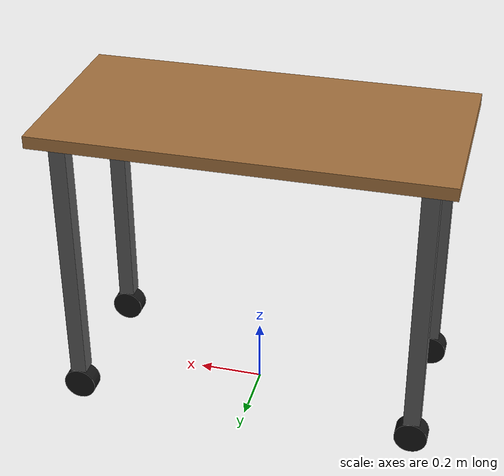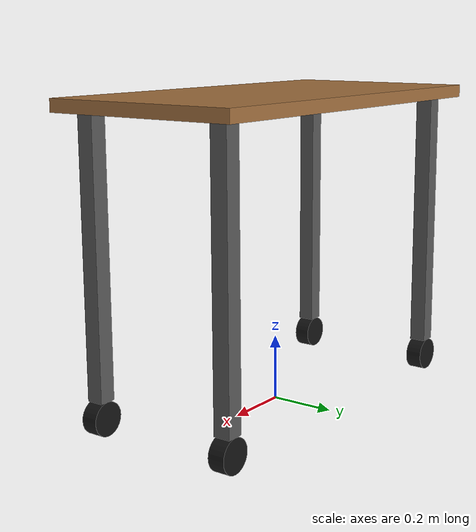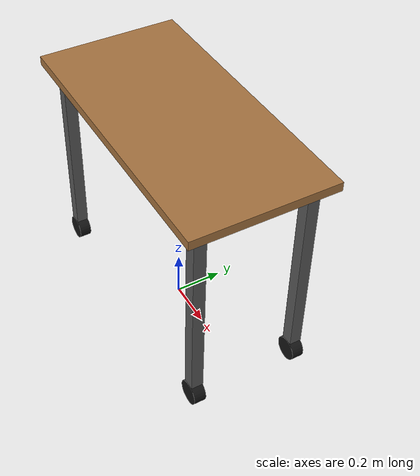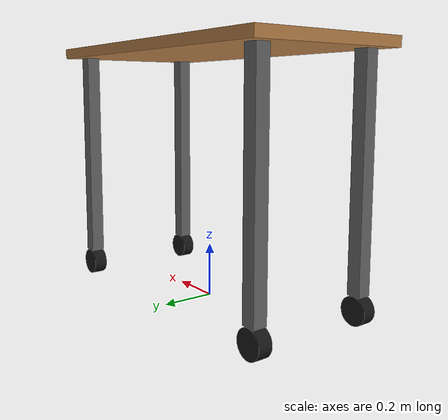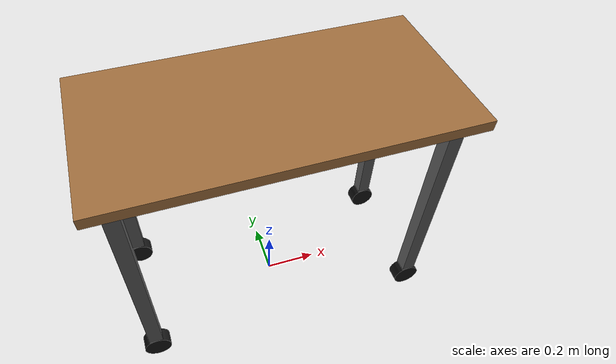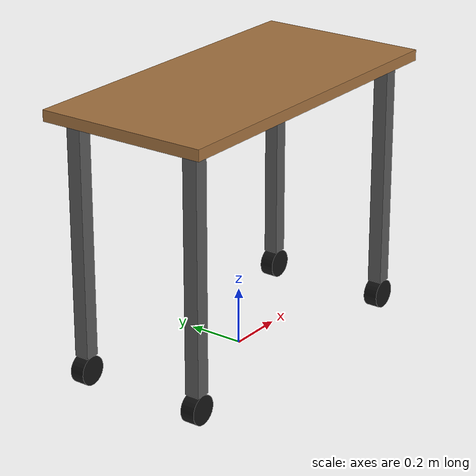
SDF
<?xml version="1.0" ?>
<sdf version="1.9">
  <model name="my_table">
    <static>true</static>

    <!-- TABLETOP                  -->
    <link name="tabletop">
      <!-- top surface at total height = 0.9525 -->
      <!-- tabletop center z = 0.9525 - 0.0381/2 = 0.93345 -->
      <pose>0 0 0.93345 0 0 0</pose>

      <collision name="tabletop_collision">
        <geometry>
          <box>
            <size>1.2192 0.60325 0.0381</size>
          </box>
        </geometry>
      </collision>

      <visual name="tabletop_visual">
        <geometry>
          <box>
            <size>1.2192 0.60325 0.0381</size>
          </box>
        </geometry>
        <material>
          <ambient>0.65 0.45 0.25 1</ambient>
          <diffuse>0.65 0.45 0.25 1</diffuse>
        </material>
      </visual>

      <inertial>
        <mass>18.0</mass>
        <inertia>
          <ixx>1.0</ixx>
          <iyy>1.0</iyy>
          <izz>1.0</izz>
          <ixy>0.0</ixy>
          <ixz>0.0</ixz>
          <iyz>0.0</iyz>
        </inertia>
      </inertial>
    </link>

    <!-- LEGS                      -->
    <!-- leg center z = wheel diameter + leg length/2 -->

    <link name="leg_fl">
      <pose>0.5334 0.226425 0.5080 0 0 0</pose>
      <collision name="collision">
        <geometry>
          <box>
            <size>0.0508 0.0508 0.8128</size>
          </box>
        </geometry>
      </collision>
      <visual name="visual">
        <geometry>
          <box>
            <size>0.0508 0.0508 0.8128</size>
          </box>
        </geometry>
        <material>
          <ambient>0.35 0.35 0.35 1</ambient>
          <diffuse>0.35 0.35 0.35 1</diffuse>
        </material>
      </visual>
      <inertial>
        <mass>2.5</mass>
        <inertia>
          <ixx>0.02</ixx>
          <iyy>0.02</iyy>
          <izz>0.02</izz>
          <ixy>0.0</ixy>
          <ixz>0.0</ixz>
          <iyz>0.0</iyz>
        </inertia>
      </inertial>
    </link>

    <link name="leg_fr">
      <pose>0.5334 -0.226425 0.5080 0 0 0</pose>
      <collision name="collision">
        <geometry>
          <box>
            <size>0.0508 0.0508 0.8128</size>
          </box>
        </geometry>
      </collision>
      <visual name="visual">
        <geometry>
          <box>
            <size>0.0508 0.0508 0.8128</size>
          </box>
        </geometry>
        <material>
          <ambient>0.35 0.35 0.35 1</ambient>
          <diffuse>0.35 0.35 0.35 1</diffuse>
        </material>
      </visual>
      <inertial>
        <mass>2.5</mass>
        <inertia>
          <ixx>0.02</ixx>
          <iyy>0.02</iyy>
          <izz>0.02</izz>
          <ixy>0.0</ixy>
          <ixz>0.0</ixz>
          <iyz>0.0</iyz>
        </inertia>
      </inertial>
    </link>

    <link name="leg_rl">
      <pose>-0.5334 0.226425 0.5080 0 0 0</pose>
      <collision name="collision">
        <geometry>
          <box>
            <size>0.0508 0.0508 0.8128</size>
          </box>
        </geometry>
      </collision>
      <visual name="visual">
        <geometry>
          <box>
            <size>0.0508 0.0508 0.8128</size>
          </box>
        </geometry>
        <material>
          <ambient>0.35 0.35 0.35 1</ambient>
          <diffuse>0.35 0.35 0.35 1</diffuse>
        </material>
      </visual>
      <inertial>
        <mass>2.5</mass>
        <inertia>
          <ixx>0.02</ixx>
          <iyy>0.02</iyy>
          <izz>0.02</izz>
          <ixy>0.0</ixy>
          <ixz>0.0</ixz>
          <iyz>0.0</iyz>
        </inertia>
      </inertial>
    </link>

    <link name="leg_rr">
      <pose>-0.5334 -0.226425 0.5080 0 0 0</pose>
      <collision name="collision">
        <geometry>
          <box>
            <size>0.0508 0.0508 0.8128</size>
          </box>
        </geometry>
      </collision>
      <visual name="visual">
        <geometry>
          <box>
            <size>0.0508 0.0508 0.8128</size>
          </box>
        </geometry>
        <material>
          <ambient>0.35 0.35 0.35 1</ambient>
          <diffuse>0.35 0.35 0.35 1</diffuse>
        </material>
      </visual>
      <inertial>
        <mass>2.5</mass>
        <inertia>
          <ixx>0.02</ixx>
          <iyy>0.02</iyy>
          <izz>0.02</izz>
          <ixy>0.0</ixy>
          <ixz>0.0</ixz>
          <iyz>0.0</iyz>
        </inertia>
      </inertial>
    </link>

    <!-- WHEELS                    -->
    <!-- wheel center z = radius = 0.0508 -->
    <!-- rotated so cylinder axis is horizontal -->

    <link name="wheel_fl">
      <pose>0.5334 0.226425 0.0508 1.5708 0 0</pose>
      <collision name="collision">
        <geometry>
          <cylinder>
            <radius>0.0508</radius>
            <length>0.0508</length>
          </cylinder>
        </geometry>
      </collision>
      <visual name="visual">
        <geometry>
          <cylinder>
            <radius>0.0508</radius>
            <length>0.0508</length>
          </cylinder>
        </geometry>
        <material>
          <ambient>0.08 0.08 0.08 1</ambient>
          <diffuse>0.08 0.08 0.08 1</diffuse>
        </material>
      </visual>
      <inertial>
        <mass>0.5</mass>
        <inertia>
          <ixx>0.001</ixx>
          <iyy>0.001</iyy>
          <izz>0.001</izz>
          <ixy>0.0</ixy>
          <ixz>0.0</ixz>
          <iyz>0.0</iyz>
        </inertia>
      </inertial>
    </link>

    <link name="wheel_fr">
      <pose>0.5334 -0.226425 0.0508 1.5708 0 0</pose>
      <collision name="collision">
        <geometry>
          <cylinder>
            <radius>0.0508</radius>
            <length>0.0508</length>
          </cylinder>
        </geometry>
      </collision>
      <visual name="visual">
        <geometry>
          <cylinder>
            <radius>0.0508</radius>
            <length>0.0508</length>
          </cylinder>
        </geometry>
        <material>
          <ambient>0.08 0.08 0.08 1</ambient>
          <diffuse>0.08 0.08 0.08 1</diffuse>
        </material>
      </visual>
      <inertial>
        <mass>0.5</mass>
        <inertia>
          <ixx>0.001</ixx>
          <iyy>0.001</iyy>
          <izz>0.001</izz>
          <ixy>0.0</ixy>
          <ixz>0.0</ixz>
          <iyz>0.0</iyz>
        </inertia>
      </inertial>
    </link>

    <link name="wheel_rl">
      <pose>-0.5334 0.226425 0.0508 1.5708 0 0</pose>
      <collision name="collision">
        <geometry>
          <cylinder>
            <radius>0.0508</radius>
            <length>0.0508</length>
          </cylinder>
        </geometry>
      </collision>
      <visual name="visual">
        <geometry>
          <cylinder>
            <radius>0.0508</radius>
            <length>0.0508</length>
          </cylinder>
        </geometry>
        <material>
          <ambient>0.08 0.08 0.08 1</ambient>
          <diffuse>0.08 0.08 0.08 1</diffuse>
        </material>
      </visual>
      <inertial>
        <mass>0.5</mass>
        <inertia>
          <ixx>0.001</ixx>
          <iyy>0.001</iyy>
          <izz>0.001</izz>
          <ixy>0.0</ixy>
          <ixz>0.0</ixz>
          <iyz>0.0</iyz>
        </inertia>
      </inertial>
    </link>

    <link name="wheel_rr">
      <pose>-0.5334 -0.226425 0.0508 1.5708 0 0</pose>
      <collision name="collision">
        <geometry>
          <cylinder>
            <radius>0.0508</radius>
            <length>0.0508</length>
          </cylinder>
        </geometry>
      </collision>
      <visual name="visual">
        <geometry>
          <cylinder>
            <radius>0.0508</radius>
            <length>0.0508</length>
          </cylinder>
        </geometry>
        <material>
          <ambient>0.08 0.08 0.08 1</ambient>
          <diffuse>0.08 0.08 0.08 1</diffuse>
        </material>
      </visual>
      <inertial>
        <mass>0.5</mass>
        <inertia>
          <ixx>0.001</ixx>
          <iyy>0.001</iyy>
          <izz>0.001</izz>
          <ixy>0.0</ixy>
          <ixz>0.0</ixz>
          <iyz>0.0</iyz>
        </inertia>
      </inertial>
    </link>

    <!-- FIXED JOINTS              -->

    <joint name="joint_table_leg_fl" type="fixed">
      <parent>tabletop</parent>
      <child>leg_fl</child>
    </joint>

    <joint name="joint_table_leg_fr" type="fixed">
      <parent>tabletop</parent>
      <child>leg_fr</child>
    </joint>

    <joint name="joint_table_leg_rl" type="fixed">
      <parent>tabletop</parent>
      <child>leg_rl</child>
    </joint>

    <joint name="joint_table_leg_rr" type="fixed">
      <parent>tabletop</parent>
      <child>leg_rr</child>
    </joint>

    <joint name="joint_leg_fl_wheel" type="fixed">
      <parent>leg_fl</parent>
      <child>wheel_fl</child>
    </joint>

    <joint name="joint_leg_fr_wheel" type="fixed">
      <parent>leg_fr</parent>
      <child>wheel_fr</child>
    </joint>

    <joint name="joint_leg_rl_wheel" type="fixed">
      <parent>leg_rl</parent>
      <child>wheel_rl</child>
    </joint>

    <joint name="joint_leg_rr_wheel" type="fixed">
      <parent>leg_rr</parent>
      <child>wheel_rr</child>
    </joint>

  </model>
</sdf>
